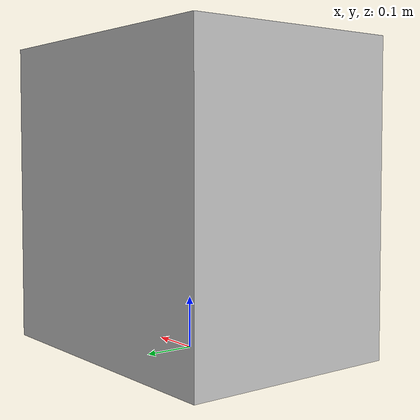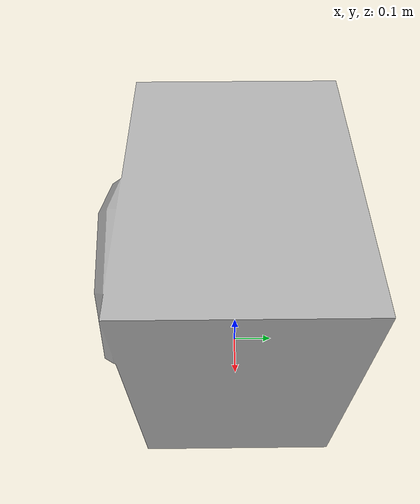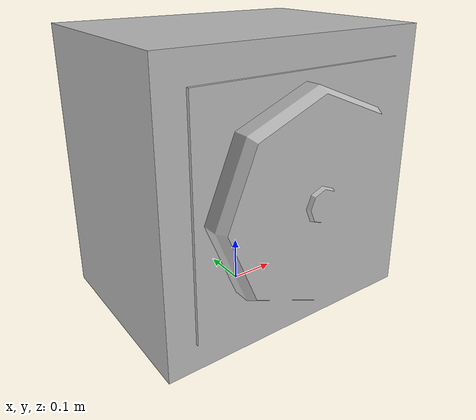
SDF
<sdf version="1.6">
  <model name="FreezerCondenser">
   <static>true</static>
    <link name="body">
      <pose>0 0 0 0 0 0</pose>

      <visual name="visual">
        <geometry>
          <mesh>
            <uri>model://FreezerCondenser/meshes/FreezerCondenser.obj</uri>
          </mesh>
        </geometry>
      </visual>

      <collision name="collision">
        <geometry>
          <mesh>
            <uri>model://FreezerCondenser/meshes/FreezerCondenser_Col.obj</uri>
          </mesh>
        </geometry>
      </collision>

    </link>
  </model>
</sdf>
